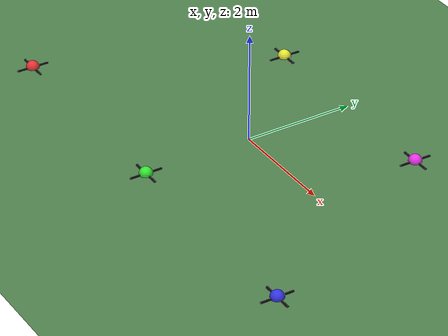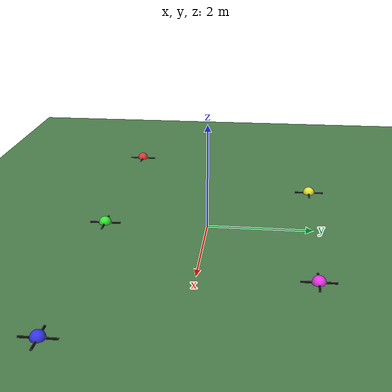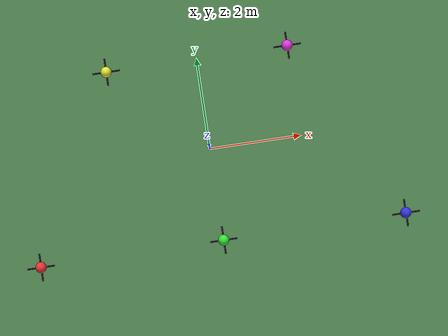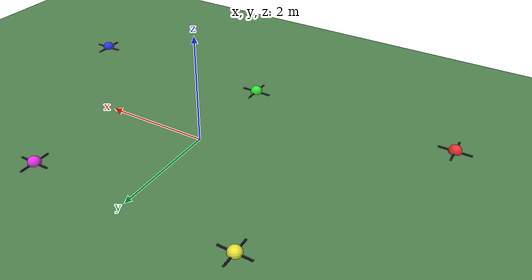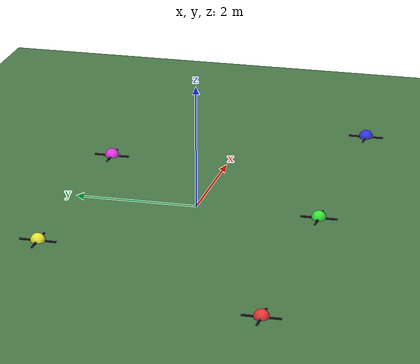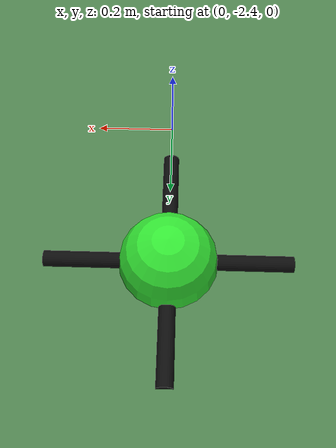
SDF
<?xml version="1.0"?>
<sdf version="1.6">
  <world name="thesis_multi_drone_world">

    <!-- Optimized physics for high FPS with multiple drones -->
    <physics type="ode">
      <max_step_size>0.002</max_step_size>
      <real_time_factor>1.0</real_time_factor>
      <real_time_update_rate>500</real_time_update_rate>
      <ode>
        <solver>
          <type>quick</type>
          <iters>50</iters>
          <sor>1.3</sor>
        </solver>
        <constraints>
          <cfm>0.0</cfm>
          <erp>0.2</erp>
          <contact_max_correcting_vel>100.0</contact_max_correcting_vel>
          <contact_surface_layer>0.001</contact_surface_layer>
        </constraints>
      </ode>
    </physics>

    <light name="sun" type="directional">
      <pose>0 0 10 0 0 0</pose>
      <diffuse>0.8 0.8 0.8 1</diffuse>
      <specular>0.2 0.2 0.2 1</specular>
      <direction>-0.5 0.1 -0.9</direction>
      <cast_shadows>false</cast_shadows>
    </light>

    <!-- Wind Model: Constant + Sinusoidal disturbance -->
    <plugin name="wind_plugin" filename="libgazebo_ros_wind.so">
      <ros>
        <namespace>/wind</namespace>
      </ros>
      <frame_id>world</frame_id>
      <wind_direction>
        <x>1.0</x>  <!-- Wind direction: +X -->
        <y>0.5</y>  <!-- Slight Y component -->
        <z>0.0</z>
      </wind_direction>
      <wind_force_mean>2.0</wind_force_mean>  <!-- Base wind: 2.0 N -->
      <wind_force_variance>0.5</wind_force_variance>  <!-- Random gusts -->
      <update_rate>10.0</update_rate>
    </plugin>

    <!-- Simple ground -->
    <model name="ground">
      <static>true</static>
      <link name="link">
        <collision name="collision">
          <geometry>
            <plane>
              <normal>0 0 1</normal>
            </plane>
          </geometry>
        </collision>
        <visual name="visual">
          <geometry>
            <plane>
              <normal>0 0 1</normal>
              <size>100 100</size>
            </plane>
          </geometry>
          <material>
            <ambient>0.3 0.5 0.3 1</ambient>
          </material>
        </visual>
      </link>
    </model>

    <!-- Drone 0: P-only controller (Red) -->
    <!-- Grid layout (3x2): Collision-free starting positions -->
    <!-- Row 1: [0]  [1]  [2]   Row 2: [3]  [4] -->
    <model name="agent_0">
      <pose>-4 -2 0 0 0 0</pose>  <!-- Left, bottom row -->
      <static>false</static>

      <link name="base_link">
        <inertial>
          <mass>1.5</mass>
          <inertia>
            <ixx>0.03</ixx>
            <iyy>0.03</iyy>
            <izz>0.05</izz>
          </inertia>
        </inertial>

        <visual name="body">
          <geometry>
            <sphere><radius>0.12</radius></sphere>
          </geometry>
          <material>
            <ambient>0.8 0.1 0.1 1</ambient>
            <diffuse>0.9 0.2 0.2 1</diffuse>
          </material>
        </visual>

        <visual name="arm_x">
          <pose>0 0 0 0 1.5708 0</pose>
          <geometry>
            <cylinder><radius>0.02</radius><length>0.6</length></cylinder>
          </geometry>
          <material>
            <ambient>0.05 0.05 0.05 1</ambient>
          </material>
        </visual>

        <visual name="arm_y">
          <pose>0 0 0 1.5708 0 0</pose>
          <geometry>
            <cylinder><radius>0.02</radius><length>0.6</length></cylinder>
          </geometry>
          <material>
            <ambient>0.05 0.05 0.05 1</ambient>
          </material>
        </visual>

        <collision name="collision">
          <geometry>
            <sphere><radius>0.2</radius></sphere>
          </geometry>
        </collision>
      </link>

      <plugin name="simple_drone_plugin" filename="libsimple_drone_plugin.so">
        <namespace>agent_0</namespace>
      </plugin>
    </model>

    <!-- Drone 1: PI controller (Green) -->
    <model name="agent_1">
      <pose>0 -2 0 0 0 0</pose>  <!-- Center, bottom row -->
      <static>false</static>

      <link name="base_link">
        <inertial>
          <mass>1.5</mass>
          <inertia>
            <ixx>0.03</ixx>
            <iyy>0.03</iyy>
            <izz>0.05</izz>
          </inertia>
        </inertial>

        <visual name="body">
          <geometry>
            <sphere><radius>0.12</radius></sphere>
          </geometry>
          <material>
            <ambient>0.1 0.8 0.1 1</ambient>
            <diffuse>0.2 0.9 0.2 1</diffuse>
          </material>
        </visual>

        <visual name="arm_x">
          <pose>0 0 0 0 1.5708 0</pose>
          <geometry>
            <cylinder><radius>0.02</radius><length>0.6</length></cylinder>
          </geometry>
          <material>
            <ambient>0.05 0.05 0.05 1</ambient>
          </material>
        </visual>

        <visual name="arm_y">
          <pose>0 0 0 1.5708 0 0</pose>
          <geometry>
            <cylinder><radius>0.02</radius><length>0.6</length></cylinder>
          </geometry>
          <material>
            <ambient>0.05 0.05 0.05 1</ambient>
          </material>
        </visual>

        <collision name="collision">
          <geometry>
            <sphere><radius>0.2</radius></sphere>
          </geometry>
        </collision>
      </link>

      <plugin name="simple_drone_plugin" filename="libsimple_drone_plugin.so">
        <namespace>agent_1</namespace>
      </plugin>
    </model>

    <!-- Drone 2: PD controller (Blue) -->
    <model name="agent_2">
      <pose>4 -2 0 0 0 0</pose>  <!-- Right, bottom row -->
      <static>false</static>

      <link name="base_link">
        <inertial>
          <mass>1.5</mass>
          <inertia>
            <ixx>0.03</ixx>
            <iyy>0.03</iyy>
            <izz>0.05</izz>
          </inertia>
        </inertial>

        <visual name="body">
          <geometry>
            <sphere><radius>0.12</radius></sphere>
          </geometry>
          <material>
            <ambient>0.1 0.1 0.8 1</ambient>
            <diffuse>0.2 0.2 0.9 1</diffuse>
          </material>
        </visual>

        <visual name="arm_x">
          <pose>0 0 0 0 1.5708 0</pose>
          <geometry>
            <cylinder><radius>0.02</radius><length>0.6</length></cylinder>
          </geometry>
          <material>
            <ambient>0.05 0.05 0.05 1</ambient>
          </material>
        </visual>

        <visual name="arm_y">
          <pose>0 0 0 1.5708 0 0</pose>
          <geometry>
            <cylinder><radius>0.02</radius><length>0.6</length></cylinder>
          </geometry>
          <material>
            <ambient>0.05 0.05 0.05 1</ambient>
          </material>
        </visual>

        <collision name="collision">
          <geometry>
            <sphere><radius>0.2</radius></sphere>
          </geometry>
        </collision>
      </link>

      <plugin name="simple_drone_plugin" filename="libsimple_drone_plugin.so">
        <namespace>agent_2</namespace>
      </plugin>
    </model>

    <!-- Drone 3: PID controller (Yellow) -->
    <model name="agent_3">
      <pose>-2 2 0 0 0 0</pose>  <!-- Left-center, top row -->
      <static>false</static>

      <link name="base_link">
        <inertial>
          <mass>1.5</mass>
          <inertia>
            <ixx>0.03</ixx>
            <iyy>0.03</iyy>
            <izz>0.05</izz>
          </inertia>
        </inertial>

        <visual name="body">
          <geometry>
            <sphere><radius>0.12</radius></sphere>
          </geometry>
          <material>
            <ambient>0.8 0.8 0.1 1</ambient>
            <diffuse>0.9 0.9 0.2 1</diffuse>
          </material>
        </visual>

        <visual name="arm_x">
          <pose>0 0 0 0 1.5708 0</pose>
          <geometry>
            <cylinder><radius>0.02</radius><length>0.6</length></cylinder>
          </geometry>
          <material>
            <ambient>0.05 0.05 0.05 1</ambient>
          </material>
        </visual>

        <visual name="arm_y">
          <pose>0 0 0 1.5708 0 0</pose>
          <geometry>
            <cylinder><radius>0.02</radius><length>0.6</length></cylinder>
          </geometry>
          <material>
            <ambient>0.05 0.05 0.05 1</ambient>
          </material>
        </visual>

        <collision name="collision">
          <geometry>
            <sphere><radius>0.2</radius></sphere>
          </geometry>
        </collision>
      </link>

      <plugin name="simple_drone_plugin" filename="libsimple_drone_plugin.so">
        <namespace>agent_3</namespace>
      </plugin>
    </model>

    <!-- Drone 4: PID+Fuzzy controller (Magenta) -->
    <model name="agent_4">
      <pose>2 2 0 0 0 0</pose>  <!-- Right-center, top row -->
      <static>false</static>

      <link name="base_link">
        <inertial>
          <mass>1.5</mass>
          <inertia>
            <ixx>0.03</ixx>
            <iyy>0.03</iyy>
            <izz>0.05</izz>
          </inertia>
        </inertial>

        <visual name="body">
          <geometry>
            <sphere><radius>0.12</radius></sphere>
          </geometry>
          <material>
            <ambient>0.8 0.1 0.8 1</ambient>
            <diffuse>0.9 0.2 0.9 1</diffuse>
          </material>
        </visual>

        <visual name="arm_x">
          <pose>0 0 0 0 1.5708 0</pose>
          <geometry>
            <cylinder><radius>0.02</radius><length>0.6</length></cylinder>
          </geometry>
          <material>
            <ambient>0.05 0.05 0.05 1</ambient>
          </material>
        </visual>

        <visual name="arm_y">
          <pose>0 0 0 1.5708 0 0</pose>
          <geometry>
            <cylinder><radius>0.02</radius><length>0.6</length></cylinder>
          </geometry>
          <material>
            <ambient>0.05 0.05 0.05 1</ambient>
          </material>
        </visual>

        <collision name="collision">
          <geometry>
            <sphere><radius>0.2</radius></sphere>
          </geometry>
        </collision>
      </link>

      <plugin name="simple_drone_plugin" filename="libsimple_drone_plugin.so">
        <namespace>agent_4</namespace>
      </plugin>
    </model>

  </world>
</sdf>
